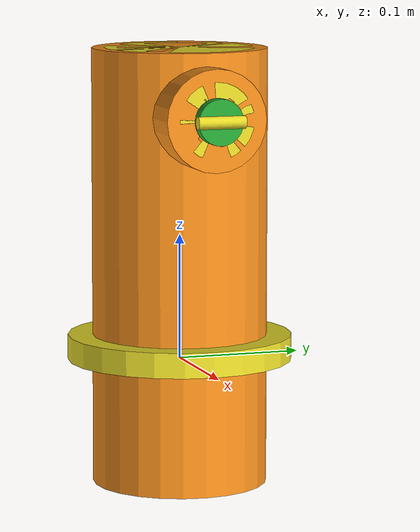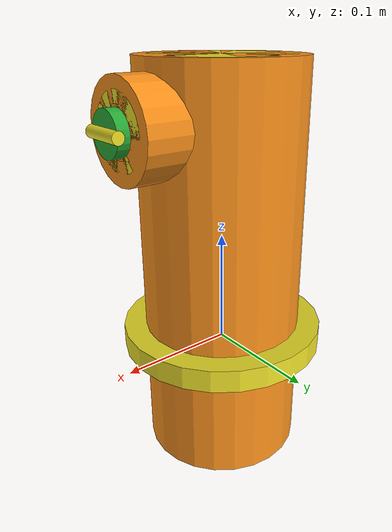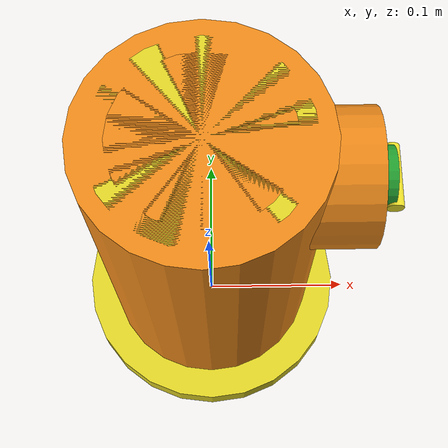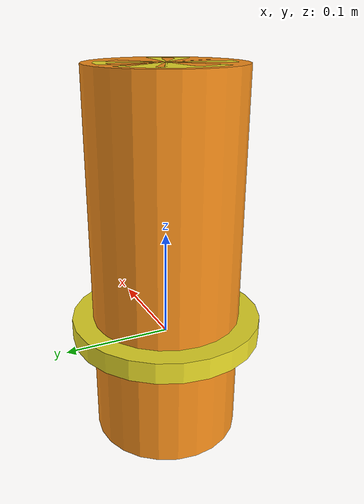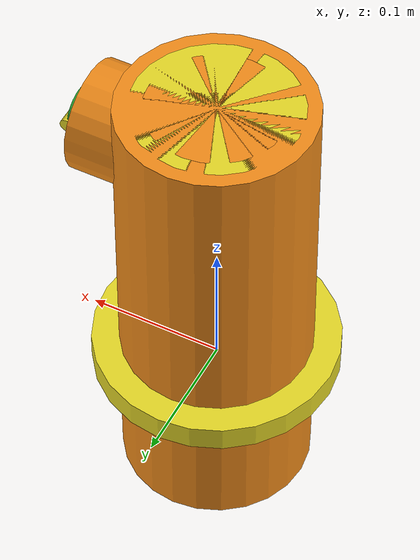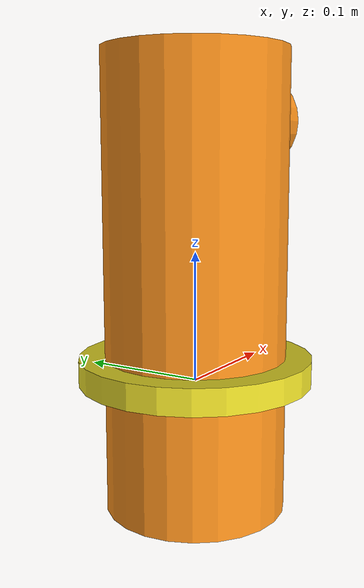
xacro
<?xml version="1.0"?>
<robot name="my_robot" xmlns:xacro="http://www.ros.org/wiki/xacro">

    <xacro:macro name="cylinder_link" params="name material radius length">
        <link name="${name}">
            <visual>
                <geometry>
                    <cylinder radius="${radius}" length="${length}" />
                </geometry>
                <origin xyz="0 0 ${length / 2.0}" rpy="0 0 0" />
                <material name="${material}" />
            </visual>
            <collision>
                <geometry>
                    <cylinder radius="${radius}" length="${length}"/>
                </geometry>
                <origin xyz="0 0 ${length / 2.0}" rpy="0 0 0" />
            </collision>
        <xacro:cylinder_inertia m="0.3" r="${radius}" h="${length}"
                        o_xyz="0 0 ${length / 2.0}" o_rpy="0 0 0" />
        </link>
    </xacro:macro>

    <xacro:cylinder_link name="arm_base_link" material="yellow" radius="0.09" length="0.02" />
    <xacro:cylinder_link name="vertical_prismatic_link1" material="orange" radius="0.07" length="0.35" />
    <xacro:cylinder_link name="vertical_prismatic_link2" material="yellow" radius="0.06" length="0.35" />
    <xacro:cylinder_link name="vertical_prismatic_link3" material="orange" radius="0.05" length="0.35" />

    <xacro:cylinder_link name="horizontal_prismatic_link1" material="orange" radius="0.04" length="0.125" />
    <xacro:cylinder_link name="horizontal_prismatic_link2" material="yellow" radius="0.03" length="0.125" />
    <xacro:cylinder_link name="horizontal_prismatic_link3" material="orange" radius="0.02" length="0.125" />
    <xacro:cylinder_link name="roll_link" material="greenish" radius="0.018" length="0.01" />

    <link name="pitch_link">
        <visual>
            <geometry>
                <cylinder radius="0.005" length="0.038" />
            </geometry>
            <origin xyz="0 0 0" rpy="${pi/2} 0 0" />
            <material name="yellow" />
        </visual>
        <collision>
            <geometry>
                <cylinder radius="0.005" length="0.038"/>
            </geometry>
            <origin xyz="0 0 0" rpy="${pi/2} 0 0" />
        </collision>
    <xacro:cylinder_inertia m="0.3" r="0.005" h="0.038"
                    o_xyz="0 0 0" o_rpy="${pi/2} 0 0" />
    </link>

    <joint name="arm_base_prismatic1_joint" type="fixed">
        <parent link="arm_base_link" />
        <child link="vertical_prismatic_link1" />
        <origin xyz="0 0 -0.1" rpy="0 0 0" />
        <axis xyz="0 0 1" />
    </joint>

    <joint name="vertical_prismatic1_2_joint" type="prismatic">
        <parent link="vertical_prismatic_link1" />
        <child link="vertical_prismatic_link2" />
        <origin xyz="0 0 0" rpy="0 0 0" />
        <axis xyz="0 0 1" />
        <limit lower="0" upper="0.35" effort="100" velocity="100" />
        <dynamics friction="0.3" damping="0.3" />
    </joint>

    <joint name="vertical_prismatic2_3_joint" type="prismatic">
        <parent link="vertical_prismatic_link2" />
        <child link="vertical_prismatic_link3" />
        <origin xyz="0 0 0" rpy="0 0 0" />
        <axis xyz="0 0 1" />
        <mimic joint="vertical_prismatic1_2_joint" multiplier="1" offset="0"/>
        <limit lower="0" upper="0.35" effort="100" velocity="100" />
        <dynamics friction="0.3" damping="0.3" />
    </joint>

    <joint name="horizontal_vertical_prismatic_joint" type="fixed">
        <parent link="vertical_prismatic_link3" />
        <child link="horizontal_prismatic_link1" />
        <origin xyz="-0.03 0 ${0.35 - 0.05}" rpy="0 ${pi/2} 0" />
    </joint>

    <joint name="horizontal_prismatic1_2_joint" type="prismatic">
        <parent link="horizontal_prismatic_link1" />
        <child link="horizontal_prismatic_link2" />
        <origin xyz="0 0 0" rpy="0 0 0" />
        <axis xyz="0 0 1" />
        <limit lower="0" upper="0.125" effort="100" velocity="100" />
        <dynamics friction="0.3" damping="0.3" />
    </joint>

    <joint name="horizontal_prismatic2_3_joint" type="prismatic">
        <parent link="horizontal_prismatic_link2" />
        <child link="horizontal_prismatic_link3" />
        <origin xyz="0 0 0" rpy="0 0 0" />
        <axis xyz="0 0 1" />
        <mimic joint="horizontal_prismatic1_2_joint" multiplier="1" offset="0"/>
        <limit lower="0" upper="0.1" effort="100" velocity="100" />
        <dynamics friction="0.3" damping="0.3" />
    </joint>

    <joint name="horizontal_prismatic3_roll_joint" type="continuous">
        <parent link="horizontal_prismatic_link3" />
        <child link="roll_link" />
        <origin xyz="0 0 0.125" rpy="0 0 0" />
        <axis xyz="0 0 1" />
        <limit effort="100" velocity="100" />
        <dynamics friction="0.3" damping="0.3" />
    </joint>

    <joint name="roll_pitch_joint" type="revolute">
        <parent link="roll_link" />
        <child link="pitch_link" />
        <origin xyz="0 0 0.01" rpy="0 0 0" />
        <axis xyz="0 1 0" />
        <limit lower="${-pi/2}" upper="${pi/2}" effort="100" velocity="100" />
        <dynamics friction="0.3" damping="0.3" />
    </joint>

</robot>
